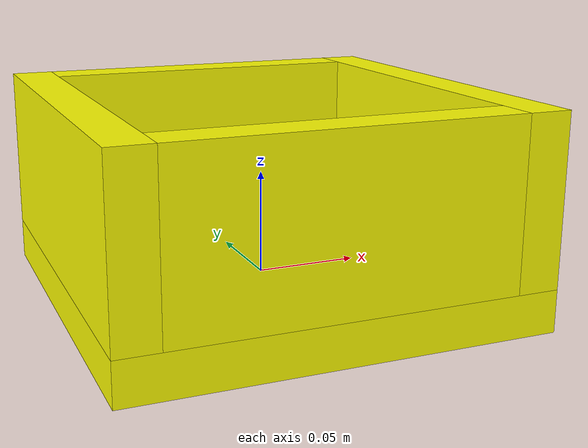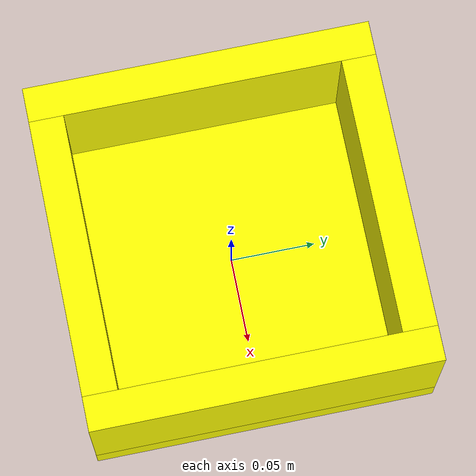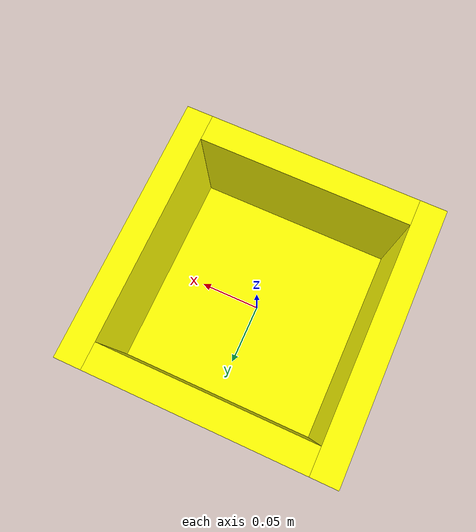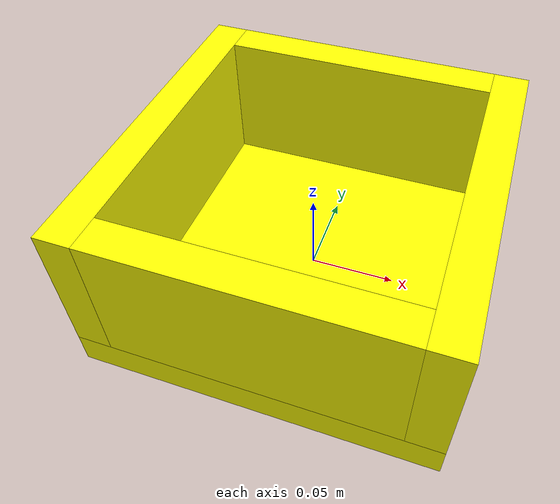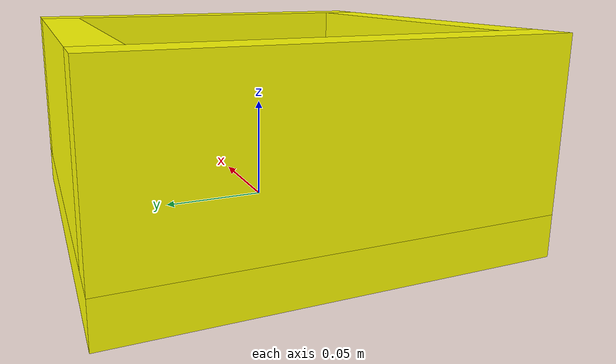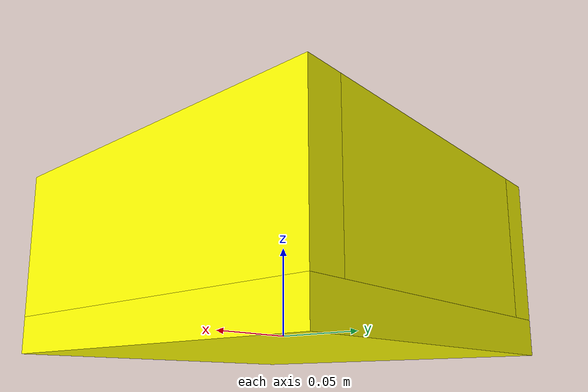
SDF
<?xml version='1.0'?>
<sdf version='1.7'>
  <model name='bin_yellow'>
    <!-- BASE -->
    <link name='link_0'>
      <inertial>
        <mass>1</mass>
        <inertia><ixx>0.166667</ixx><ixy>0</ixy><ixz>0</ixz><iyy>0.166667</iyy><iyz>0</iyz><izz>0.166667</izz></inertia>
        <pose>0 0 0 0 -0 0</pose>
      </inertial>
      <pose>0 0 0 0 -0 0</pose>
      <visual name='visual'>
        <geometry><box><size>0.20 0.20 0.02</size></box></geometry>
        <material>
          <ambient>1.0 1.0 0.0 1.0</ambient>
          <diffuse>1.0 1.0 0.0 1.0</diffuse>
          <specular>0.1 0.1 0.1 1.0</specular>
        </material>
      </visual>
      <collision name='collision'>
        <geometry><box><size>0.20 0.20 0.02</size></box></geometry>
        <surface><friction><ode><mu>1</mu><mu2>1</mu2></ode></friction></surface>
      </collision>
    </link>

    <!-- LATO SINISTRO -->
    <link name='link_1'>
      <inertial>
        <mass>1</mass>
        <inertia><ixx>0.166667</ixx><ixy>0</ixy><ixz>0</ixz><iyy>0.166667</iyy><iyz>0</iyz><izz>0.166667</izz></inertia>
      </inertial>
      <pose>-0.09 0 0.05 0 -0 0</pose>
      <visual name='visual'>
        <geometry><box><size>0.02 0.20 0.08</size></box></geometry>
        <material>
          <ambient>1.0 1.0 0.0 1.0</ambient>
          <diffuse>1.0 1.0 0.0 1.0</diffuse>
          <specular>0.1 0.1 0.1 1.0</specular>
        </material>
      </visual>
      <collision name='collision'>
        <geometry><box><size>0.02 0.20 0.08</size></box></geometry>
        <surface><friction><ode><mu>1</mu><mu2>1</mu2></ode></friction></surface>
      </collision>
    </link>

    <!-- LATO DESTRO -->
    <link name='link_1_clone'>
      <inertial>
        <mass>1</mass>
        <inertia><ixx>0.166667</ixx><ixy>0</ixy><ixz>0</ixz><iyy>0.166667</iyy><iyz>0</iyz><izz>0.166667</izz></inertia>
      </inertial>
      <pose>0.09 0 0.05 0 -0 0</pose>
      <visual name='visual'>
        <geometry><box><size>0.02 0.20 0.08</size></box></geometry>
        <material>
          <ambient>1.0 1.0 0.0 1.0</ambient>
          <diffuse>1.0 1.0 0.0 1.0</diffuse>
          <specular>0.1 0.1 0.1 1.0</specular>
        </material>
      </visual>
      <collision name='collision'>
        <geometry><box><size>0.02 0.20 0.08</size></box></geometry>
        <surface><friction><ode><mu>1</mu><mu2>1</mu2></ode></friction></surface>
      </collision>
    </link>

    <!-- LATO FRONTALE -->
    <link name='link_2'>
      <inertial>
        <mass>1</mass>
        <inertia><ixx>0.166667</ixx><ixy>0</ixy><ixz>0</ixz><iyy>0.166667</iyy><iyz>0</iyz><izz>0.166667</izz></inertia>
      </inertial>
      <pose>0 -0.09 0.05 0 -0 0</pose>
      <visual name='visual'>
        <geometry><box><size>0.16 0.02 0.08</size></box></geometry>
        <material>
          <ambient>1.0 1.0 0.0 1.0</ambient>
          <diffuse>1.0 1.0 0.0 1.0</diffuse>
          <specular>0.1 0.1 0.1 1.0</specular>
        </material>
      </visual>
      <collision name='collision'>
        <geometry><box><size>0.16 0.02 0.08</size></box></geometry>
        <surface><friction><ode><mu>1</mu><mu2>1</mu2></ode></friction></surface>
      </collision>
    </link>

    <!-- LATO POSTERIORE -->
    <link name='link_2_clone'>
      <inertial>
        <mass>1</mass>
        <inertia><ixx>0.166667</ixx><ixy>0</ixy><ixz>0</ixz><iyy>0.166667</iyy><iyz>0</iyz><izz>0.166667</izz></inertia>
      </inertial>
      <pose>0 0.09 0.05 0 -0 0</pose>
      <visual name='visual'>
        <geometry><box><size>0.16 0.02 0.08</size></box></geometry>
        <material>
          <ambient>1.0 1.0 0.0 1.0</ambient>
          <diffuse>1.0 1.0 0.0 1.0</diffuse>
          <specular>0.1 0.1 0.1 1.0</specular>
        </material>
      </visual>
      <collision name='collision'>
        <geometry><box><size>0.16 0.02 0.08</size></box></geometry>
        <surface><friction><ode><mu>1</mu><mu2>1</mu2></ode></friction></surface>
      </collision>
    </link>
    <static>0</static>
  </model>
</sdf>
